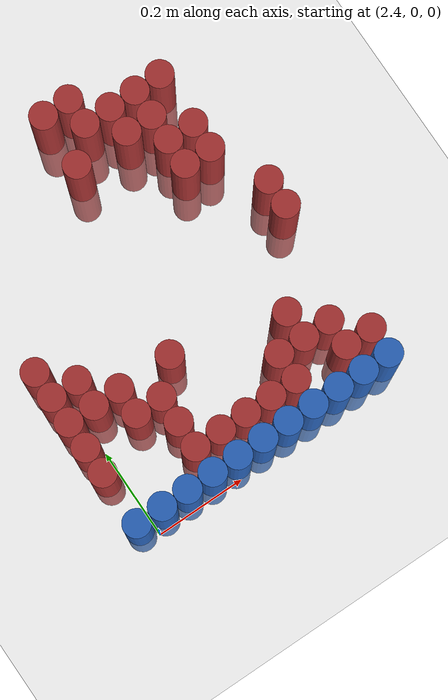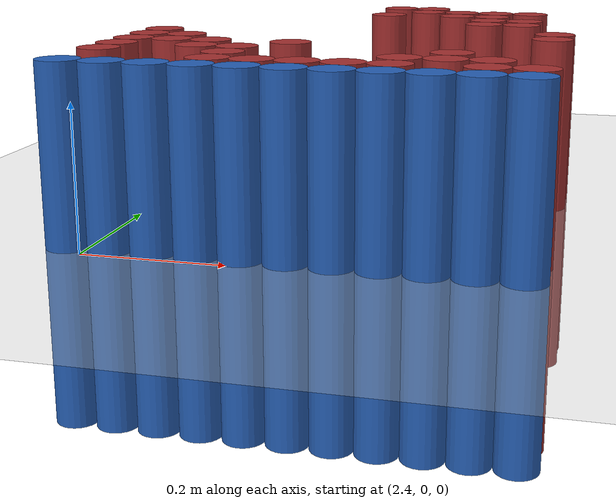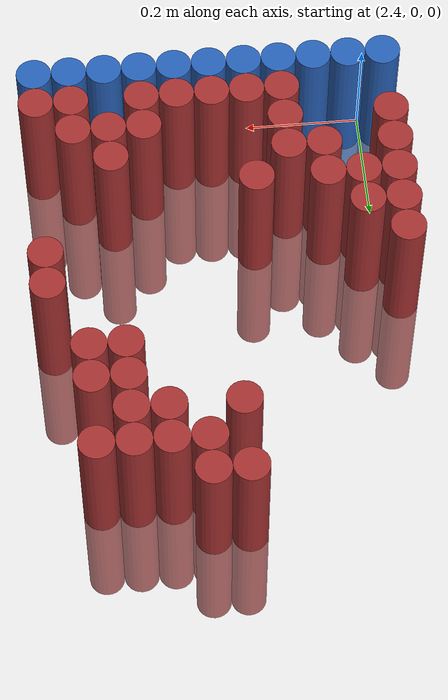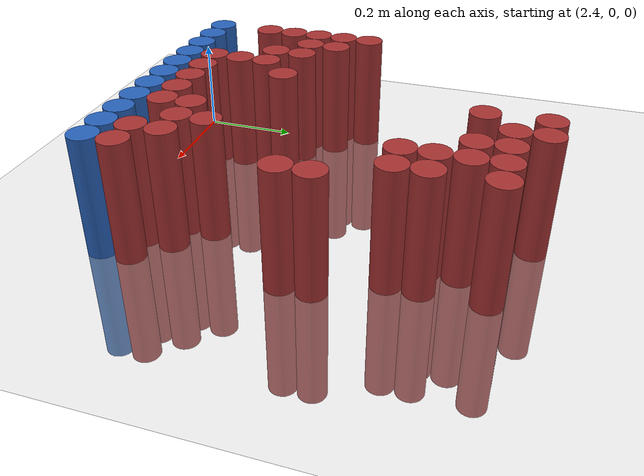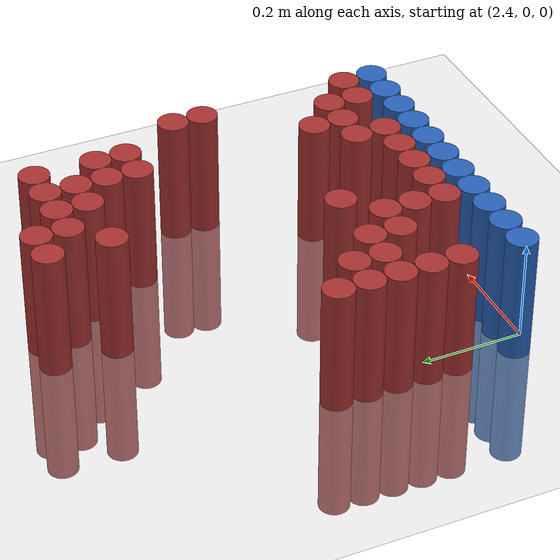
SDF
<sdf version="1.6">
 <world name="default">
  <model name="ground_plane">
   <static>1</static>
   <link name="link">
    <collision name="collision">
     <geometry><plane><normal>0 0 1</normal><size>100 100</size></plane></geometry>
     <surface><friction><ode><mu>100</mu><mu2>50</mu2></ode></friction></surface>
    </collision>
    <visual name="visual">
     <cast_shadows>0</cast_shadows>
     <geometry><plane><normal>0 0 1</normal><size>100 100</size></plane></geometry>
     <material>
      <script><uri>file://media/materials/scripts/gazebo.material</uri><name>Gazebo/Grey</name></script>
     </material>
    </visual>
   </link>
  </model>
  <model name="unit_cylinder_219">
   <static>1</static>
   <pose>2.670000 0.810000 0.000000 0.000000 0.000000 0.000000</pose>
   <link name="link">
    <inertial>
     <mass>1</mass>
     <inertia><ixx>0.145833</ixx><ixy>0</ixy><ixz>0</ixz><iyy>0.145833</iyy><iyz>0</iyz><izz>0.125</izz></inertia>
    </inertial>
    <collision name="collision">
     <geometry><cylinder><radius>0.030000</radius><length>0.5</length></cylinder></geometry>
    </collision>
    <visual name="visual">
     <geometry><cylinder><radius>0.030000</radius><length>0.5</length></cylinder></geometry>
     <material>
      <ambient>0.648000 0.192000 0.192000 1</ambient>
      <diffuse>0.648000 0.192000 0.192000 1</diffuse>
     </material>
     <material>
      <script><name>Gazebo/Grey</name><uri>file://media/materials/scripts/gazebo.material</uri></script>
     </material>
    </visual>
   </link>
  </model>
  <model name="unit_cylinder_220">
   <static>1</static>
   <pose>2.730000 0.810000 0.000000 0.000000 0.000000 0.000000</pose>
   <link name="link">
    <inertial>
     <mass>1</mass>
     <inertia><ixx>0.145833</ixx><ixy>0</ixy><ixz>0</ixz><iyy>0.145833</iyy><iyz>0</iyz><izz>0.125</izz></inertia>
    </inertial>
    <collision name="collision">
     <geometry><cylinder><radius>0.030000</radius><length>0.5</length></cylinder></geometry>
    </collision>
    <visual name="visual">
     <geometry><cylinder><radius>0.030000</radius><length>0.5</length></cylinder></geometry>
     <material>
      <ambient>0.648000 0.192000 0.192000 1</ambient>
      <diffuse>0.648000 0.192000 0.192000 1</diffuse>
     </material>
     <material>
      <script><name>Gazebo/Grey</name><uri>file://media/materials/scripts/gazebo.material</uri></script>
     </material>
    </visual>
   </link>
  </model>
  <model name="unit_cylinder_231">
   <static>1</static>
   <pose>2.730000 0.750000 0.000000 0.000000 0.000000 0.000000</pose>
   <link name="link">
    <inertial>
     <mass>1</mass>
     <inertia><ixx>0.145833</ixx><ixy>0</ixy><ixz>0</ixz><iyy>0.145833</iyy><iyz>0</iyz><izz>0.125</izz></inertia>
    </inertial>
    <collision name="collision">
     <geometry><cylinder><radius>0.030000</radius><length>0.5</length></cylinder></geometry>
    </collision>
    <visual name="visual">
     <geometry><cylinder><radius>0.030000</radius><length>0.5</length></cylinder></geometry>
     <material>
      <ambient>0.648000 0.192000 0.192000 1</ambient>
      <diffuse>0.648000 0.192000 0.192000 1</diffuse>
     </material>
     <material>
      <script><name>Gazebo/Grey</name><uri>file://media/materials/scripts/gazebo.material</uri></script>
     </material>
    </visual>
   </link>
  </model>
  <model name="unit_cylinder_232">
   <static>1</static>
   <pose>2.790000 0.750000 0.000000 0.000000 0.000000 0.000000</pose>
   <link name="link">
    <inertial>
     <mass>1</mass>
     <inertia><ixx>0.145833</ixx><ixy>0</ixy><ixz>0</ixz><iyy>0.145833</iyy><iyz>0</iyz><izz>0.125</izz></inertia>
    </inertial>
    <collision name="collision">
     <geometry><cylinder><radius>0.030000</radius><length>0.5</length></cylinder></geometry>
    </collision>
    <visual name="visual">
     <geometry><cylinder><radius>0.030000</radius><length>0.5</length></cylinder></geometry>
     <material>
      <ambient>0.648000 0.192000 0.192000 1</ambient>
      <diffuse>0.648000 0.192000 0.192000 1</diffuse>
     </material>
     <material>
      <script><name>Gazebo/Grey</name><uri>file://media/materials/scripts/gazebo.material</uri></script>
     </material>
    </visual>
   </link>
  </model>
  <model name="unit_cylinder_233">
   <static>1</static>
   <pose>2.850000 0.750000 0.000000 0.000000 0.000000 0.000000</pose>
   <link name="link">
    <inertial>
     <mass>1</mass>
     <inertia><ixx>0.145833</ixx><ixy>0</ixy><ixz>0</ixz><iyy>0.145833</iyy><iyz>0</iyz><izz>0.125</izz></inertia>
    </inertial>
    <collision name="collision">
     <geometry><cylinder><radius>0.030000</radius><length>0.5</length></cylinder></geometry>
    </collision>
    <visual name="visual">
     <geometry><cylinder><radius>0.030000</radius><length>0.5</length></cylinder></geometry>
     <material>
      <ambient>0.648000 0.192000 0.192000 1</ambient>
      <diffuse>0.648000 0.192000 0.192000 1</diffuse>
     </material>
     <material>
      <script><name>Gazebo/Grey</name><uri>file://media/materials/scripts/gazebo.material</uri></script>
     </material>
    </visual>
   </link>
  </model>
  <model name="unit_cylinder_234">
   <static>1</static>
   <pose>2.910000 0.750000 0.000000 0.000000 0.000000 0.000000</pose>
   <link name="link">
    <inertial>
     <mass>1</mass>
     <inertia><ixx>0.145833</ixx><ixy>0</ixy><ixz>0</ixz><iyy>0.145833</iyy><iyz>0</iyz><izz>0.125</izz></inertia>
    </inertial>
    <collision name="collision">
     <geometry><cylinder><radius>0.030000</radius><length>0.5</length></cylinder></geometry>
    </collision>
    <visual name="visual">
     <geometry><cylinder><radius>0.030000</radius><length>0.5</length></cylinder></geometry>
     <material>
      <ambient>0.648000 0.192000 0.192000 1</ambient>
      <diffuse>0.648000 0.192000 0.192000 1</diffuse>
     </material>
     <material>
      <script><name>Gazebo/Grey</name><uri>file://media/materials/scripts/gazebo.material</uri></script>
     </material>
    </visual>
   </link>
  </model>
  <model name="unit_cylinder_243">
   <static>1</static>
   <pose>2.670000 0.690000 0.000000 0.000000 0.000000 0.000000</pose>
   <link name="link">
    <inertial>
     <mass>1</mass>
     <inertia><ixx>0.145833</ixx><ixy>0</ixy><ixz>0</ixz><iyy>0.145833</iyy><iyz>0</iyz><izz>0.125</izz></inertia>
    </inertial>
    <collision name="collision">
     <geometry><cylinder><radius>0.030000</radius><length>0.5</length></cylinder></geometry>
    </collision>
    <visual name="visual">
     <geometry><cylinder><radius>0.030000</radius><length>0.5</length></cylinder></geometry>
     <material>
      <ambient>0.648000 0.192000 0.192000 1</ambient>
      <diffuse>0.648000 0.192000 0.192000 1</diffuse>
     </material>
     <material>
      <script><name>Gazebo/Grey</name><uri>file://media/materials/scripts/gazebo.material</uri></script>
     </material>
    </visual>
   </link>
  </model>
  <model name="unit_cylinder_244">
   <static>1</static>
   <pose>2.790000 0.690000 0.000000 0.000000 0.000000 0.000000</pose>
   <link name="link">
    <inertial>
     <mass>1</mass>
     <inertia><ixx>0.145833</ixx><ixy>0</ixy><ixz>0</ixz><iyy>0.145833</iyy><iyz>0</iyz><izz>0.125</izz></inertia>
    </inertial>
    <collision name="collision">
     <geometry><cylinder><radius>0.030000</radius><length>0.5</length></cylinder></geometry>
    </collision>
    <visual name="visual">
     <geometry><cylinder><radius>0.030000</radius><length>0.5</length></cylinder></geometry>
     <material>
      <ambient>0.648000 0.192000 0.192000 1</ambient>
      <diffuse>0.648000 0.192000 0.192000 1</diffuse>
     </material>
     <material>
      <script><name>Gazebo/Grey</name><uri>file://media/materials/scripts/gazebo.material</uri></script>
     </material>
    </visual>
   </link>
  </model>
  <model name="unit_cylinder_245">
   <static>1</static>
   <pose>2.850000 0.690000 0.000000 0.000000 0.000000 0.000000</pose>
   <link name="link">
    <inertial>
     <mass>1</mass>
     <inertia><ixx>0.145833</ixx><ixy>0</ixy><ixz>0</ixz><iyy>0.145833</iyy><iyz>0</iyz><izz>0.125</izz></inertia>
    </inertial>
    <collision name="collision">
     <geometry><cylinder><radius>0.030000</radius><length>0.5</length></cylinder></geometry>
    </collision>
    <visual name="visual">
     <geometry><cylinder><radius>0.030000</radius><length>0.5</length></cylinder></geometry>
     <material>
      <ambient>0.648000 0.192000 0.192000 1</ambient>
      <diffuse>0.648000 0.192000 0.192000 1</diffuse>
     </material>
     <material>
      <script><name>Gazebo/Grey</name><uri>file://media/materials/scripts/gazebo.material</uri></script>
     </material>
    </visual>
   </link>
  </model>
  <model name="unit_cylinder_249">
   <static>1</static>
   <pose>2.850000 0.630000 0.000000 0.000000 0.000000 0.000000</pose>
   <link name="link">
    <inertial>
     <mass>1</mass>
     <inertia><ixx>0.145833</ixx><ixy>0</ixy><ixz>0</ixz><iyy>0.145833</iyy><iyz>0</iyz><izz>0.125</izz></inertia>
    </inertial>
    <collision name="collision">
     <geometry><cylinder><radius>0.030000</radius><length>0.5</length></cylinder></geometry>
    </collision>
    <visual name="visual">
     <geometry><cylinder><radius>0.030000</radius><length>0.5</length></cylinder></geometry>
     <material>
      <ambient>0.648000 0.192000 0.192000 1</ambient>
      <diffuse>0.648000 0.192000 0.192000 1</diffuse>
     </material>
     <material>
      <script><name>Gazebo/Grey</name><uri>file://media/materials/scripts/gazebo.material</uri></script>
     </material>
    </visual>
   </link>
  </model>
  <model name="unit_cylinder_250">
   <static>1</static>
   <pose>2.910000 0.630000 0.000000 0.000000 0.000000 0.000000</pose>
   <link name="link">
    <inertial>
     <mass>1</mass>
     <inertia><ixx>0.145833</ixx><ixy>0</ixy><ixz>0</ixz><iyy>0.145833</iyy><iyz>0</iyz><izz>0.125</izz></inertia>
    </inertial>
    <collision name="collision">
     <geometry><cylinder><radius>0.030000</radius><length>0.5</length></cylinder></geometry>
    </collision>
    <visual name="visual">
     <geometry><cylinder><radius>0.030000</radius><length>0.5</length></cylinder></geometry>
     <material>
      <ambient>0.648000 0.192000 0.192000 1</ambient>
      <diffuse>0.648000 0.192000 0.192000 1</diffuse>
     </material>
     <material>
      <script><name>Gazebo/Grey</name><uri>file://media/materials/scripts/gazebo.material</uri></script>
     </material>
    </visual>
   </link>
  </model>
  <model name="unit_cylinder_252">
   <static>1</static>
   <pose>2.850000 0.570000 0.000000 0.000000 0.000000 0.000000</pose>
   <link name="link">
    <inertial>
     <mass>1</mass>
     <inertia><ixx>0.145833</ixx><ixy>0</ixy><ixz>0</ixz><iyy>0.145833</iyy><iyz>0</iyz><izz>0.125</izz></inertia>
    </inertial>
    <collision name="collision">
     <geometry><cylinder><radius>0.030000</radius><length>0.5</length></cylinder></geometry>
    </collision>
    <visual name="visual">
     <geometry><cylinder><radius>0.030000</radius><length>0.5</length></cylinder></geometry>
     <material>
      <ambient>0.648000 0.192000 0.192000 1</ambient>
      <diffuse>0.648000 0.192000 0.192000 1</diffuse>
     </material>
     <material>
      <script><name>Gazebo/Grey</name><uri>file://media/materials/scripts/gazebo.material</uri></script>
     </material>
    </visual>
   </link>
  </model>
  <model name="unit_cylinder_253">
   <static>1</static>
   <pose>2.910000 0.570000 0.000000 0.000000 0.000000 0.000000</pose>
   <link name="link">
    <inertial>
     <mass>1</mass>
     <inertia><ixx>0.145833</ixx><ixy>0</ixy><ixz>0</ixz><iyy>0.145833</iyy><iyz>0</iyz><izz>0.125</izz></inertia>
    </inertial>
    <collision name="collision">
     <geometry><cylinder><radius>0.030000</radius><length>0.5</length></cylinder></geometry>
    </collision>
    <visual name="visual">
     <geometry><cylinder><radius>0.030000</radius><length>0.5</length></cylinder></geometry>
     <material>
      <ambient>0.648000 0.192000 0.192000 1</ambient>
      <diffuse>0.648000 0.192000 0.192000 1</diffuse>
     </material>
     <material>
      <script><name>Gazebo/Grey</name><uri>file://media/materials/scripts/gazebo.material</uri></script>
     </material>
    </visual>
   </link>
  </model>
  <model name="unit_cylinder_259">
   <static>1</static>
   <pose>2.970000 0.450000 0.000000 0.000000 0.000000 0.000000</pose>
   <link name="link">
    <inertial>
     <mass>1</mass>
     <inertia><ixx>0.145833</ixx><ixy>0</ixy><ixz>0</ixz><iyy>0.145833</iyy><iyz>0</iyz><izz>0.125</izz></inertia>
    </inertial>
    <collision name="collision">
     <geometry><cylinder><radius>0.030000</radius><length>0.5</length></cylinder></geometry>
    </collision>
    <visual name="visual">
     <geometry><cylinder><radius>0.030000</radius><length>0.5</length></cylinder></geometry>
     <material>
      <ambient>0.648000 0.192000 0.192000 1</ambient>
      <diffuse>0.648000 0.192000 0.192000 1</diffuse>
     </material>
     <material>
      <script><name>Gazebo/Grey</name><uri>file://media/materials/scripts/gazebo.material</uri></script>
     </material>
    </visual>
   </link>
  </model>
  <model name="unit_cylinder_265">
   <static>1</static>
   <pose>2.370000 0.390000 0.000000 0.000000 0.000000 0.000000</pose>
   <link name="link">
    <inertial>
     <mass>1</mass>
     <inertia><ixx>0.145833</ixx><ixy>0</ixy><ixz>0</ixz><iyy>0.145833</iyy><iyz>0</iyz><izz>0.125</izz></inertia>
    </inertial>
    <collision name="collision">
     <geometry><cylinder><radius>0.030000</radius><length>0.5</length></cylinder></geometry>
    </collision>
    <visual name="visual">
     <geometry><cylinder><radius>0.030000</radius><length>0.5</length></cylinder></geometry>
     <material>
      <ambient>0.648000 0.192000 0.192000 1</ambient>
      <diffuse>0.648000 0.192000 0.192000 1</diffuse>
     </material>
     <material>
      <script><name>Gazebo/Grey</name><uri>file://media/materials/scripts/gazebo.material</uri></script>
     </material>
    </visual>
   </link>
  </model>
  <model name="unit_cylinder_266">
   <static>1</static>
   <pose>2.970000 0.390000 0.000000 0.000000 0.000000 0.000000</pose>
   <link name="link">
    <inertial>
     <mass>1</mass>
     <inertia><ixx>0.145833</ixx><ixy>0</ixy><ixz>0</ixz><iyy>0.145833</iyy><iyz>0</iyz><izz>0.125</izz></inertia>
    </inertial>
    <collision name="collision">
     <geometry><cylinder><radius>0.030000</radius><length>0.5</length></cylinder></geometry>
    </collision>
    <visual name="visual">
     <geometry><cylinder><radius>0.030000</radius><length>0.5</length></cylinder></geometry>
     <material>
      <ambient>0.648000 0.192000 0.192000 1</ambient>
      <diffuse>0.648000 0.192000 0.192000 1</diffuse>
     </material>
     <material>
      <script><name>Gazebo/Grey</name><uri>file://media/materials/scripts/gazebo.material</uri></script>
     </material>
    </visual>
   </link>
  </model>
  <model name="unit_cylinder_271">
   <static>1</static>
   <pose>2.370000 0.330000 0.000000 0.000000 0.000000 0.000000</pose>
   <link name="link">
    <inertial>
     <mass>1</mass>
     <inertia><ixx>0.145833</ixx><ixy>0</ixy><ixz>0</ixz><iyy>0.145833</iyy><iyz>0</iyz><izz>0.125</izz></inertia>
    </inertial>
    <collision name="collision">
     <geometry><cylinder><radius>0.030000</radius><length>0.5</length></cylinder></geometry>
    </collision>
    <visual name="visual">
     <geometry><cylinder><radius>0.030000</radius><length>0.5</length></cylinder></geometry>
     <material>
      <ambient>0.648000 0.192000 0.192000 1</ambient>
      <diffuse>0.648000 0.192000 0.192000 1</diffuse>
     </material>
     <material>
      <script><name>Gazebo/Grey</name><uri>file://media/materials/scripts/gazebo.material</uri></script>
     </material>
    </visual>
   </link>
  </model>
  <model name="unit_cylinder_272">
   <static>1</static>
   <pose>2.430000 0.330000 0.000000 0.000000 0.000000 0.000000</pose>
   <link name="link">
    <inertial>
     <mass>1</mass>
     <inertia><ixx>0.145833</ixx><ixy>0</ixy><ixz>0</ixz><iyy>0.145833</iyy><iyz>0</iyz><izz>0.125</izz></inertia>
    </inertial>
    <collision name="collision">
     <geometry><cylinder><radius>0.030000</radius><length>0.5</length></cylinder></geometry>
    </collision>
    <visual name="visual">
     <geometry><cylinder><radius>0.030000</radius><length>0.5</length></cylinder></geometry>
     <material>
      <ambient>0.648000 0.192000 0.192000 1</ambient>
      <diffuse>0.648000 0.192000 0.192000 1</diffuse>
     </material>
     <material>
      <script><name>Gazebo/Grey</name><uri>file://media/materials/scripts/gazebo.material</uri></script>
     </material>
    </visual>
   </link>
  </model>
  <model name="unit_cylinder_276">
   <static>1</static>
   <pose>2.370000 0.270000 0.000000 0.000000 0.000000 0.000000</pose>
   <link name="link">
    <inertial>
     <mass>1</mass>
     <inertia><ixx>0.145833</ixx><ixy>0</ixy><ixz>0</ixz><iyy>0.145833</iyy><iyz>0</iyz><izz>0.125</izz></inertia>
    </inertial>
    <collision name="collision">
     <geometry><cylinder><radius>0.030000</radius><length>0.5</length></cylinder></geometry>
    </collision>
    <visual name="visual">
     <geometry><cylinder><radius>0.030000</radius><length>0.5</length></cylinder></geometry>
     <material>
      <ambient>0.648000 0.192000 0.192000 1</ambient>
      <diffuse>0.648000 0.192000 0.192000 1</diffuse>
     </material>
     <material>
      <script><name>Gazebo/Grey</name><uri>file://media/materials/scripts/gazebo.material</uri></script>
     </material>
    </visual>
   </link>
  </model>
  <model name="unit_cylinder_277">
   <static>1</static>
   <pose>2.430000 0.270000 0.000000 0.000000 0.000000 0.000000</pose>
   <link name="link">
    <inertial>
     <mass>1</mass>
     <inertia><ixx>0.145833</ixx><ixy>0</ixy><ixz>0</ixz><iyy>0.145833</iyy><iyz>0</iyz><izz>0.125</izz></inertia>
    </inertial>
    <collision name="collision">
     <geometry><cylinder><radius>0.030000</radius><length>0.5</length></cylinder></geometry>
    </collision>
    <visual name="visual">
     <geometry><cylinder><radius>0.030000</radius><length>0.5</length></cylinder></geometry>
     <material>
      <ambient>0.648000 0.192000 0.192000 1</ambient>
      <diffuse>0.648000 0.192000 0.192000 1</diffuse>
     </material>
     <material>
      <script><name>Gazebo/Grey</name><uri>file://media/materials/scripts/gazebo.material</uri></script>
     </material>
    </visual>
   </link>
  </model>
  <model name="unit_cylinder_278">
   <static>1</static>
   <pose>2.490000 0.270000 0.000000 0.000000 0.000000 0.000000</pose>
   <link name="link">
    <inertial>
     <mass>1</mass>
     <inertia><ixx>0.145833</ixx><ixy>0</ixy><ixz>0</ixz><iyy>0.145833</iyy><iyz>0</iyz><izz>0.125</izz></inertia>
    </inertial>
    <collision name="collision">
     <geometry><cylinder><radius>0.030000</radius><length>0.5</length></cylinder></geometry>
    </collision>
    <visual name="visual">
     <geometry><cylinder><radius>0.030000</radius><length>0.5</length></cylinder></geometry>
     <material>
      <ambient>0.648000 0.192000 0.192000 1</ambient>
      <diffuse>0.648000 0.192000 0.192000 1</diffuse>
     </material>
     <material>
      <script><name>Gazebo/Grey</name><uri>file://media/materials/scripts/gazebo.material</uri></script>
     </material>
    </visual>
   </link>
  </model>
  <model name="unit_cylinder_279">
   <static>1</static>
   <pose>2.610000 0.270000 0.000000 0.000000 0.000000 0.000000</pose>
   <link name="link">
    <inertial>
     <mass>1</mass>
     <inertia><ixx>0.145833</ixx><ixy>0</ixy><ixz>0</ixz><iyy>0.145833</iyy><iyz>0</iyz><izz>0.125</izz></inertia>
    </inertial>
    <collision name="collision">
     <geometry><cylinder><radius>0.030000</radius><length>0.5</length></cylinder></geometry>
    </collision>
    <visual name="visual">
     <geometry><cylinder><radius>0.030000</radius><length>0.5</length></cylinder></geometry>
     <material>
      <ambient>0.648000 0.192000 0.192000 1</ambient>
      <diffuse>0.648000 0.192000 0.192000 1</diffuse>
     </material>
     <material>
      <script><name>Gazebo/Grey</name><uri>file://media/materials/scripts/gazebo.material</uri></script>
     </material>
    </visual>
   </link>
  </model>
  <model name="unit_cylinder_284">
   <static>1</static>
   <pose>2.370000 0.210000 0.000000 0.000000 0.000000 0.000000</pose>
   <link name="link">
    <inertial>
     <mass>1</mass>
     <inertia><ixx>0.145833</ixx><ixy>0</ixy><ixz>0</ixz><iyy>0.145833</iyy><iyz>0</iyz><izz>0.125</izz></inertia>
    </inertial>
    <collision name="collision">
     <geometry><cylinder><radius>0.030000</radius><length>0.5</length></cylinder></geometry>
    </collision>
    <visual name="visual">
     <geometry><cylinder><radius>0.030000</radius><length>0.5</length></cylinder></geometry>
     <material>
      <ambient>0.648000 0.192000 0.192000 1</ambient>
      <diffuse>0.648000 0.192000 0.192000 1</diffuse>
     </material>
     <material>
      <script><name>Gazebo/Grey</name><uri>file://media/materials/scripts/gazebo.material</uri></script>
     </material>
    </visual>
   </link>
  </model>
  <model name="unit_cylinder_285">
   <static>1</static>
   <pose>2.490000 0.210000 0.000000 0.000000 0.000000 0.000000</pose>
   <link name="link">
    <inertial>
     <mass>1</mass>
     <inertia><ixx>0.145833</ixx><ixy>0</ixy><ixz>0</ixz><iyy>0.145833</iyy><iyz>0</iyz><izz>0.125</izz></inertia>
    </inertial>
    <collision name="collision">
     <geometry><cylinder><radius>0.030000</radius><length>0.5</length></cylinder></geometry>
    </collision>
    <visual name="visual">
     <geometry><cylinder><radius>0.030000</radius><length>0.5</length></cylinder></geometry>
     <material>
      <ambient>0.648000 0.192000 0.192000 1</ambient>
      <diffuse>0.648000 0.192000 0.192000 1</diffuse>
     </material>
     <material>
      <script><name>Gazebo/Grey</name><uri>file://media/materials/scripts/gazebo.material</uri></script>
     </material>
    </visual>
   </link>
  </model>
  <model name="unit_cylinder_286">
   <static>1</static>
   <pose>2.550000 0.210000 0.000000 0.000000 0.000000 0.000000</pose>
   <link name="link">
    <inertial>
     <mass>1</mass>
     <inertia><ixx>0.145833</ixx><ixy>0</ixy><ixz>0</ixz><iyy>0.145833</iyy><iyz>0</iyz><izz>0.125</izz></inertia>
    </inertial>
    <collision name="collision">
     <geometry><cylinder><radius>0.030000</radius><length>0.5</length></cylinder></geometry>
    </collision>
    <visual name="visual">
     <geometry><cylinder><radius>0.030000</radius><length>0.5</length></cylinder></geometry>
     <material>
      <ambient>0.648000 0.192000 0.192000 1</ambient>
      <diffuse>0.648000 0.192000 0.192000 1</diffuse>
     </material>
     <material>
      <script><name>Gazebo/Grey</name><uri>file://media/materials/scripts/gazebo.material</uri></script>
     </material>
    </visual>
   </link>
  </model>
  <model name="unit_cylinder_287">
   <static>1</static>
   <pose>2.850000 0.210000 0.000000 0.000000 0.000000 0.000000</pose>
   <link name="link">
    <inertial>
     <mass>1</mass>
     <inertia><ixx>0.145833</ixx><ixy>0</ixy><ixz>0</ixz><iyy>0.145833</iyy><iyz>0</iyz><izz>0.125</izz></inertia>
    </inertial>
    <collision name="collision">
     <geometry><cylinder><radius>0.030000</radius><length>0.5</length></cylinder></geometry>
    </collision>
    <visual name="visual">
     <geometry><cylinder><radius>0.030000</radius><length>0.5</length></cylinder></geometry>
     <material>
      <ambient>0.648000 0.192000 0.192000 1</ambient>
      <diffuse>0.648000 0.192000 0.192000 1</diffuse>
     </material>
     <material>
      <script><name>Gazebo/Grey</name><uri>file://media/materials/scripts/gazebo.material</uri></script>
     </material>
    </visual>
   </link>
  </model>
  <model name="unit_cylinder_293">
   <static>1</static>
   <pose>2.370000 0.150000 0.000000 0.000000 0.000000 0.000000</pose>
   <link name="link">
    <inertial>
     <mass>1</mass>
     <inertia><ixx>0.145833</ixx><ixy>0</ixy><ixz>0</ixz><iyy>0.145833</iyy><iyz>0</iyz><izz>0.125</izz></inertia>
    </inertial>
    <collision name="collision">
     <geometry><cylinder><radius>0.030000</radius><length>0.5</length></cylinder></geometry>
    </collision>
    <visual name="visual">
     <geometry><cylinder><radius>0.030000</radius><length>0.5</length></cylinder></geometry>
     <material>
      <ambient>0.648000 0.192000 0.192000 1</ambient>
      <diffuse>0.648000 0.192000 0.192000 1</diffuse>
     </material>
     <material>
      <script><name>Gazebo/Grey</name><uri>file://media/materials/scripts/gazebo.material</uri></script>
     </material>
    </visual>
   </link>
  </model>
  <model name="unit_cylinder_294">
   <static>1</static>
   <pose>2.550000 0.150000 0.000000 0.000000 0.000000 0.000000</pose>
   <link name="link">
    <inertial>
     <mass>1</mass>
     <inertia><ixx>0.145833</ixx><ixy>0</ixy><ixz>0</ixz><iyy>0.145833</iyy><iyz>0</iyz><izz>0.125</izz></inertia>
    </inertial>
    <collision name="collision">
     <geometry><cylinder><radius>0.030000</radius><length>0.5</length></cylinder></geometry>
    </collision>
    <visual name="visual">
     <geometry><cylinder><radius>0.030000</radius><length>0.5</length></cylinder></geometry>
     <material>
      <ambient>0.648000 0.192000 0.192000 1</ambient>
      <diffuse>0.648000 0.192000 0.192000 1</diffuse>
     </material>
     <material>
      <script><name>Gazebo/Grey</name><uri>file://media/materials/scripts/gazebo.material</uri></script>
     </material>
    </visual>
   </link>
  </model>
  <model name="unit_cylinder_295">
   <static>1</static>
   <pose>2.790000 0.150000 0.000000 0.000000 0.000000 0.000000</pose>
   <link name="link">
    <inertial>
     <mass>1</mass>
     <inertia><ixx>0.145833</ixx><ixy>0</ixy><ixz>0</ixz><iyy>0.145833</iyy><iyz>0</iyz><izz>0.125</izz></inertia>
    </inertial>
    <collision name="collision">
     <geometry><cylinder><radius>0.030000</radius><length>0.5</length></cylinder></geometry>
    </collision>
    <visual name="visual">
     <geometry><cylinder><radius>0.030000</radius><length>0.5</length></cylinder></geometry>
     <material>
      <ambient>0.648000 0.192000 0.192000 1</ambient>
      <diffuse>0.648000 0.192000 0.192000 1</diffuse>
     </material>
     <material>
      <script><name>Gazebo/Grey</name><uri>file://media/materials/scripts/gazebo.material</uri></script>
     </material>
    </visual>
   </link>
  </model>
  <model name="unit_cylinder_296">
   <static>1</static>
   <pose>2.850000 0.150000 0.000000 0.000000 0.000000 0.000000</pose>
   <link name="link">
    <inertial>
     <mass>1</mass>
     <inertia><ixx>0.145833</ixx><ixy>0</ixy><ixz>0</ixz><iyy>0.145833</iyy><iyz>0</iyz><izz>0.125</izz></inertia>
    </inertial>
    <collision name="collision">
     <geometry><cylinder><radius>0.030000</radius><length>0.5</length></cylinder></geometry>
    </collision>
    <visual name="visual">
     <geometry><cylinder><radius>0.030000</radius><length>0.5</length></cylinder></geometry>
     <material>
      <ambient>0.648000 0.192000 0.192000 1</ambient>
      <diffuse>0.648000 0.192000 0.192000 1</diffuse>
     </material>
     <material>
      <script><name>Gazebo/Grey</name><uri>file://media/materials/scripts/gazebo.material</uri></script>
     </material>
    </visual>
   </link>
  </model>
  <model name="unit_cylinder_297">
   <static>1</static>
   <pose>2.910000 0.150000 0.000000 0.000000 0.000000 0.000000</pose>
   <link name="link">
    <inertial>
     <mass>1</mass>
     <inertia><ixx>0.145833</ixx><ixy>0</ixy><ixz>0</ixz><iyy>0.145833</iyy><iyz>0</iyz><izz>0.125</izz></inertia>
    </inertial>
    <collision name="collision">
     <geometry><cylinder><radius>0.030000</radius><length>0.5</length></cylinder></geometry>
    </collision>
    <visual name="visual">
     <geometry><cylinder><radius>0.030000</radius><length>0.5</length></cylinder></geometry>
     <material>
      <ambient>0.648000 0.192000 0.192000 1</ambient>
      <diffuse>0.648000 0.192000 0.192000 1</diffuse>
     </material>
     <material>
      <script><name>Gazebo/Grey</name><uri>file://media/materials/scripts/gazebo.material</uri></script>
     </material>
    </visual>
   </link>
  </model>
  <model name="unit_cylinder_307">
   <static>1</static>
   <pose>2.550000 0.090000 0.000000 0.000000 0.000000 0.000000</pose>
   <link name="link">
    <inertial>
     <mass>1</mass>
     <inertia><ixx>0.145833</ixx><ixy>0</ixy><ixz>0</ixz><iyy>0.145833</iyy><iyz>0</iyz><izz>0.125</izz></inertia>
    </inertial>
    <collision name="collision">
     <geometry><cylinder><radius>0.030000</radius><length>0.5</length></cylinder></geometry>
    </collision>
    <visual name="visual">
     <geometry><cylinder><radius>0.030000</radius><length>0.5</length></cylinder></geometry>
     <material>
      <ambient>0.648000 0.192000 0.192000 1</ambient>
      <diffuse>0.648000 0.192000 0.192000 1</diffuse>
     </material>
     <material>
      <script><name>Gazebo/Grey</name><uri>file://media/materials/scripts/gazebo.material</uri></script>
     </material>
    </visual>
   </link>
  </model>
  <model name="unit_cylinder_308">
   <static>1</static>
   <pose>2.610000 0.090000 0.000000 0.000000 0.000000 0.000000</pose>
   <link name="link">
    <inertial>
     <mass>1</mass>
     <inertia><ixx>0.145833</ixx><ixy>0</ixy><ixz>0</ixz><iyy>0.145833</iyy><iyz>0</iyz><izz>0.125</izz></inertia>
    </inertial>
    <collision name="collision">
     <geometry><cylinder><radius>0.030000</radius><length>0.5</length></cylinder></geometry>
    </collision>
    <visual name="visual">
     <geometry><cylinder><radius>0.030000</radius><length>0.5</length></cylinder></geometry>
     <material>
      <ambient>0.648000 0.192000 0.192000 1</ambient>
      <diffuse>0.648000 0.192000 0.192000 1</diffuse>
     </material>
     <material>
      <script><name>Gazebo/Grey</name><uri>file://media/materials/scripts/gazebo.material</uri></script>
     </material>
    </visual>
   </link>
  </model>
  <model name="unit_cylinder_309">
   <static>1</static>
   <pose>2.670000 0.090000 0.000000 0.000000 0.000000 0.000000</pose>
   <link name="link">
    <inertial>
     <mass>1</mass>
     <inertia><ixx>0.145833</ixx><ixy>0</ixy><ixz>0</ixz><iyy>0.145833</iyy><iyz>0</iyz><izz>0.125</izz></inertia>
    </inertial>
    <collision name="collision">
     <geometry><cylinder><radius>0.030000</radius><length>0.5</length></cylinder></geometry>
    </collision>
    <visual name="visual">
     <geometry><cylinder><radius>0.030000</radius><length>0.5</length></cylinder></geometry>
     <material>
      <ambient>0.648000 0.192000 0.192000 1</ambient>
      <diffuse>0.648000 0.192000 0.192000 1</diffuse>
     </material>
     <material>
      <script><name>Gazebo/Grey</name><uri>file://media/materials/scripts/gazebo.material</uri></script>
     </material>
    </visual>
   </link>
  </model>
  <model name="unit_cylinder_310">
   <static>1</static>
   <pose>2.730000 0.090000 0.000000 0.000000 0.000000 0.000000</pose>
   <link name="link">
    <inertial>
     <mass>1</mass>
     <inertia><ixx>0.145833</ixx><ixy>0</ixy><ixz>0</ixz><iyy>0.145833</iyy><iyz>0</iyz><izz>0.125</izz></inertia>
    </inertial>
    <collision name="collision">
     <geometry><cylinder><radius>0.030000</radius><length>0.5</length></cylinder></geometry>
    </collision>
    <visual name="visual">
     <geometry><cylinder><radius>0.030000</radius><length>0.5</length></cylinder></geometry>
     <material>
      <ambient>0.648000 0.192000 0.192000 1</ambient>
      <diffuse>0.648000 0.192000 0.192000 1</diffuse>
     </material>
     <material>
      <script><name>Gazebo/Grey</name><uri>file://media/materials/scripts/gazebo.material</uri></script>
     </material>
    </visual>
   </link>
  </model>
  <model name="unit_cylinder_311">
   <static>1</static>
   <pose>2.790000 0.090000 0.000000 0.000000 0.000000 0.000000</pose>
   <link name="link">
    <inertial>
     <mass>1</mass>
     <inertia><ixx>0.145833</ixx><ixy>0</ixy><ixz>0</ixz><iyy>0.145833</iyy><iyz>0</iyz><izz>0.125</izz></inertia>
    </inertial>
    <collision name="collision">
     <geometry><cylinder><radius>0.030000</radius><length>0.5</length></cylinder></geometry>
    </collision>
    <visual name="visual">
     <geometry><cylinder><radius>0.030000</radius><length>0.5</length></cylinder></geometry>
     <material>
      <ambient>0.648000 0.192000 0.192000 1</ambient>
      <diffuse>0.648000 0.192000 0.192000 1</diffuse>
     </material>
     <material>
      <script><name>Gazebo/Grey</name><uri>file://media/materials/scripts/gazebo.material</uri></script>
     </material>
    </visual>
   </link>
  </model>
  <model name="unit_cylinder_312">
   <static>1</static>
   <pose>2.910000 0.090000 0.000000 0.000000 0.000000 0.000000</pose>
   <link name="link">
    <inertial>
     <mass>1</mass>
     <inertia><ixx>0.145833</ixx><ixy>0</ixy><ixz>0</ixz><iyy>0.145833</iyy><iyz>0</iyz><izz>0.125</izz></inertia>
    </inertial>
    <collision name="collision">
     <geometry><cylinder><radius>0.030000</radius><length>0.5</length></cylinder></geometry>
    </collision>
    <visual name="visual">
     <geometry><cylinder><radius>0.030000</radius><length>0.5</length></cylinder></geometry>
     <material>
      <ambient>0.648000 0.192000 0.192000 1</ambient>
      <diffuse>0.648000 0.192000 0.192000 1</diffuse>
     </material>
     <material>
      <script><name>Gazebo/Grey</name><uri>file://media/materials/scripts/gazebo.material</uri></script>
     </material>
    </visual>
   </link>
  </model>
  <model name="unit_cylinder_313">
   <static>1</static>
   <pose>2.970000 0.090000 0.000000 0.000000 0.000000 0.000000</pose>
   <link name="link">
    <inertial>
     <mass>1</mass>
     <inertia><ixx>0.145833</ixx><ixy>0</ixy><ixz>0</ixz><iyy>0.145833</iyy><iyz>0</iyz><izz>0.125</izz></inertia>
    </inertial>
    <collision name="collision">
     <geometry><cylinder><radius>0.030000</radius><length>0.5</length></cylinder></geometry>
    </collision>
    <visual name="visual">
     <geometry><cylinder><radius>0.030000</radius><length>0.5</length></cylinder></geometry>
     <material>
      <ambient>0.648000 0.192000 0.192000 1</ambient>
      <diffuse>0.648000 0.192000 0.192000 1</diffuse>
     </material>
     <material>
      <script><name>Gazebo/Grey</name><uri>file://media/materials/scripts/gazebo.material</uri></script>
     </material>
    </visual>
   </link>
  </model>
  <model name="unit_cylinder_324">
   <static>1</static>
   <pose>2.370000 0.030000 0.000000 0.000000 0.000000 0.000000</pose>
   <link name="link">
    <inertial>
     <mass>1</mass>
     <inertia><ixx>0.145833</ixx><ixy>0</ixy><ixz>0</ixz><iyy>0.145833</iyy><iyz>0</iyz><izz>0.125</izz></inertia>
    </inertial>
    <collision name="collision">
     <geometry><cylinder><radius>0.030000</radius><length>0.5</length></cylinder></geometry>
    </collision>
    <visual name="visual">
     <geometry><cylinder><radius>0.030000</radius><length>0.5</length></cylinder></geometry>
     <material>
      <ambient>0.152000 0.379000 0.720000 1</ambient>
      <diffuse>0.152000 0.379000 0.720000 1</diffuse>
     </material>
     <material>
      <script><name>Gazebo/Grey</name><uri>file://media/materials/scripts/gazebo.material</uri></script>
     </material>
    </visual>
   </link>
  </model>
  <model name="unit_cylinder_325">
   <static>1</static>
   <pose>2.430000 0.030000 0.000000 0.000000 0.000000 0.000000</pose>
   <link name="link">
    <inertial>
     <mass>1</mass>
     <inertia><ixx>0.145833</ixx><ixy>0</ixy><ixz>0</ixz><iyy>0.145833</iyy><iyz>0</iyz><izz>0.125</izz></inertia>
    </inertial>
    <collision name="collision">
     <geometry><cylinder><radius>0.030000</radius><length>0.5</length></cylinder></geometry>
    </collision>
    <visual name="visual">
     <geometry><cylinder><radius>0.030000</radius><length>0.5</length></cylinder></geometry>
     <material>
      <ambient>0.152000 0.379000 0.720000 1</ambient>
      <diffuse>0.152000 0.379000 0.720000 1</diffuse>
     </material>
     <material>
      <script><name>Gazebo/Grey</name><uri>file://media/materials/scripts/gazebo.material</uri></script>
     </material>
    </visual>
   </link>
  </model>
  <model name="unit_cylinder_326">
   <static>1</static>
   <pose>2.490000 0.030000 0.000000 0.000000 0.000000 0.000000</pose>
   <link name="link">
    <inertial>
     <mass>1</mass>
     <inertia><ixx>0.145833</ixx><ixy>0</ixy><ixz>0</ixz><iyy>0.145833</iyy><iyz>0</iyz><izz>0.125</izz></inertia>
    </inertial>
    <collision name="collision">
     <geometry><cylinder><radius>0.030000</radius><length>0.5</length></cylinder></geometry>
    </collision>
    <visual name="visual">
     <geometry><cylinder><radius>0.030000</radius><length>0.5</length></cylinder></geometry>
     <material>
      <ambient>0.152000 0.379000 0.720000 1</ambient>
      <diffuse>0.152000 0.379000 0.720000 1</diffuse>
     </material>
     <material>
      <script><name>Gazebo/Grey</name><uri>file://media/materials/scripts/gazebo.material</uri></script>
     </material>
    </visual>
   </link>
  </model>
  <model name="unit_cylinder_327">
   <static>1</static>
   <pose>2.550000 0.030000 0.000000 0.000000 0.000000 0.000000</pose>
   <link name="link">
    <inertial>
     <mass>1</mass>
     <inertia><ixx>0.145833</ixx><ixy>0</ixy><ixz>0</ixz><iyy>0.145833</iyy><iyz>0</iyz><izz>0.125</izz></inertia>
    </inertial>
    <collision name="collision">
     <geometry><cylinder><radius>0.030000</radius><length>0.5</length></cylinder></geometry>
    </collision>
    <visual name="visual">
     <geometry><cylinder><radius>0.030000</radius><length>0.5</length></cylinder></geometry>
     <material>
      <ambient>0.152000 0.379000 0.720000 1</ambient>
      <diffuse>0.152000 0.379000 0.720000 1</diffuse>
     </material>
     <material>
      <script><name>Gazebo/Grey</name><uri>file://media/materials/scripts/gazebo.material</uri></script>
     </material>
    </visual>
   </link>
  </model>
  <model name="unit_cylinder_328">
   <static>1</static>
   <pose>2.610000 0.030000 0.000000 0.000000 0.000000 0.000000</pose>
   <link name="link">
    <inertial>
     <mass>1</mass>
     <inertia><ixx>0.145833</ixx><ixy>0</ixy><ixz>0</ixz><iyy>0.145833</iyy><iyz>0</iyz><izz>0.125</izz></inertia>
    </inertial>
    <collision name="collision">
     <geometry><cylinder><radius>0.030000</radius><length>0.5</length></cylinder></geometry>
    </collision>
    <visual name="visual">
     <geometry><cylinder><radius>0.030000</radius><length>0.5</length></cylinder></geometry>
     <material>
      <ambient>0.152000 0.379000 0.720000 1</ambient>
      <diffuse>0.152000 0.379000 0.720000 1</diffuse>
     </material>
     <material>
      <script><name>Gazebo/Grey</name><uri>file://media/materials/scripts/gazebo.material</uri></script>
     </material>
    </visual>
   </link>
  </model>
  <model name="unit_cylinder_329">
   <static>1</static>
   <pose>2.670000 0.030000 0.000000 0.000000 0.000000 0.000000</pose>
   <link name="link">
    <inertial>
     <mass>1</mass>
     <inertia><ixx>0.145833</ixx><ixy>0</ixy><ixz>0</ixz><iyy>0.145833</iyy><iyz>0</iyz><izz>0.125</izz></inertia>
    </inertial>
    <collision name="collision">
     <geometry><cylinder><radius>0.030000</radius><length>0.5</length></cylinder></geometry>
    </collision>
    <visual name="visual">
     <geometry><cylinder><radius>0.030000</radius><length>0.5</length></cylinder></geometry>
     <material>
      <ambient>0.152000 0.379000 0.720000 1</ambient>
      <diffuse>0.152000 0.379000 0.720000 1</diffuse>
     </material>
     <material>
      <script><name>Gazebo/Grey</name><uri>file://media/materials/scripts/gazebo.material</uri></script>
     </material>
    </visual>
   </link>
  </model>
  <model name="unit_cylinder_330">
   <static>1</static>
   <pose>2.730000 0.030000 0.000000 0.000000 0.000000 0.000000</pose>
   <link name="link">
    <inertial>
     <mass>1</mass>
     <inertia><ixx>0.145833</ixx><ixy>0</ixy><ixz>0</ixz><iyy>0.145833</iyy><iyz>0</iyz><izz>0.125</izz></inertia>
    </inertial>
    <collision name="collision">
     <geometry><cylinder><radius>0.030000</radius><length>0.5</length></cylinder></geometry>
    </collision>
    <visual name="visual">
     <geometry><cylinder><radius>0.030000</radius><length>0.5</length></cylinder></geometry>
     <material>
      <ambient>0.152000 0.379000 0.720000 1</ambient>
      <diffuse>0.152000 0.379000 0.720000 1</diffuse>
     </material>
     <material>
      <script><name>Gazebo/Grey</name><uri>file://media/materials/scripts/gazebo.material</uri></script>
     </material>
    </visual>
   </link>
  </model>
  <model name="unit_cylinder_331">
   <static>1</static>
   <pose>2.790000 0.030000 0.000000 0.000000 0.000000 0.000000</pose>
   <link name="link">
    <inertial>
     <mass>1</mass>
     <inertia><ixx>0.145833</ixx><ixy>0</ixy><ixz>0</ixz><iyy>0.145833</iyy><iyz>0</iyz><izz>0.125</izz></inertia>
    </inertial>
    <collision name="collision">
     <geometry><cylinder><radius>0.030000</radius><length>0.5</length></cylinder></geometry>
    </collision>
    <visual name="visual">
     <geometry><cylinder><radius>0.030000</radius><length>0.5</length></cylinder></geometry>
     <material>
      <ambient>0.152000 0.379000 0.720000 1</ambient>
      <diffuse>0.152000 0.379000 0.720000 1</diffuse>
     </material>
     <material>
      <script><name>Gazebo/Grey</name><uri>file://media/materials/scripts/gazebo.material</uri></script>
     </material>
    </visual>
   </link>
  </model>
  <model name="unit_cylinder_332">
   <static>1</static>
   <pose>2.850000 0.030000 0.000000 0.000000 0.000000 0.000000</pose>
   <link name="link">
    <inertial>
     <mass>1</mass>
     <inertia><ixx>0.145833</ixx><ixy>0</ixy><ixz>0</ixz><iyy>0.145833</iyy><iyz>0</iyz><izz>0.125</izz></inertia>
    </inertial>
    <collision name="collision">
     <geometry><cylinder><radius>0.030000</radius><length>0.5</length></cylinder></geometry>
    </collision>
    <visual name="visual">
     <geometry><cylinder><radius>0.030000</radius><length>0.5</length></cylinder></geometry>
     <material>
      <ambient>0.152000 0.379000 0.720000 1</ambient>
      <diffuse>0.152000 0.379000 0.720000 1</diffuse>
     </material>
     <material>
      <script><name>Gazebo/Grey</name><uri>file://media/materials/scripts/gazebo.material</uri></script>
     </material>
    </visual>
   </link>
  </model>
  <model name="unit_cylinder_333">
   <static>1</static>
   <pose>2.910000 0.030000 0.000000 0.000000 0.000000 0.000000</pose>
   <link name="link">
    <inertial>
     <mass>1</mass>
     <inertia><ixx>0.145833</ixx><ixy>0</ixy><ixz>0</ixz><iyy>0.145833</iyy><iyz>0</iyz><izz>0.125</izz></inertia>
    </inertial>
    <collision name="collision">
     <geometry><cylinder><radius>0.030000</radius><length>0.5</length></cylinder></geometry>
    </collision>
    <visual name="visual">
     <geometry><cylinder><radius>0.030000</radius><length>0.5</length></cylinder></geometry>
     <material>
      <ambient>0.152000 0.379000 0.720000 1</ambient>
      <diffuse>0.152000 0.379000 0.720000 1</diffuse>
     </material>
     <material>
      <script><name>Gazebo/Grey</name><uri>file://media/materials/scripts/gazebo.material</uri></script>
     </material>
    </visual>
   </link>
  </model>
  <model name="unit_cylinder_334">
   <static>1</static>
   <pose>2.970000 0.030000 0.000000 0.000000 0.000000 0.000000</pose>
   <link name="link">
    <inertial>
     <mass>1</mass>
     <inertia><ixx>0.145833</ixx><ixy>0</ixy><ixz>0</ixz><iyy>0.145833</iyy><iyz>0</iyz><izz>0.125</izz></inertia>
    </inertial>
    <collision name="collision">
     <geometry><cylinder><radius>0.030000</radius><length>0.5</length></cylinder></geometry>
    </collision>
    <visual name="visual">
     <geometry><cylinder><radius>0.030000</radius><length>0.5</length></cylinder></geometry>
     <material>
      <ambient>0.152000 0.379000 0.720000 1</ambient>
      <diffuse>0.152000 0.379000 0.720000 1</diffuse>
     </material>
     <material>
      <script><name>Gazebo/Grey</name><uri>file://media/materials/scripts/gazebo.material</uri></script>
     </material>
    </visual>
   </link>
  </model>
 </world>
</sdf>
